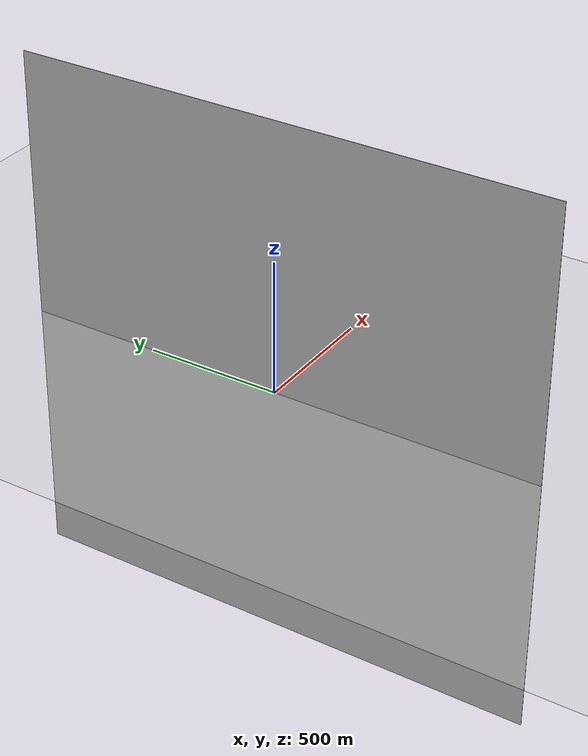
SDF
<sdf version="1.6">
 <world name="default">
  <light name="sun" type="directional">
   <pose>0 0 10 0 -0 0</pose>
   <diffuse>0.8 0.8 0.8 1</diffuse>
   <specular>0.2 0.2 0.2 1</specular>
   <attenuation>
    <range>1000</range>
    <constant>0.9</constant>
    <linear>0.01</linear>
    <quadratic>0.001</quadratic>
   </attenuation>
   <direction>-0.5 0.1 -0.9</direction>
  </light>
  <model name="ground_plane">
   <static>1</static>
   <link name="link">
    <collision name="collision">
     <geometry><plane><normal>0 0 1</normal><size>300 300</size></plane></geometry>
     <surface><friction><ode><mu>100</mu><mu2>50</mu2></ode></friction></surface>
    </collision>
    <visual name="visual">
     <cast_shadows>0</cast_shadows>
     <geometry><plane><normal>0 0 1</normal><size>300 300</size></plane></geometry>
     <material>
      <script><uri>file://media/materials/scripts/gazebo.material</uri><name>Gazebo/Grey</name></script>
     </material>
    </visual>
   </link>
  </model>
  <gravity>0 0 -9.8</gravity>
  <magnetic_field>6e-06 2.3e-05 -4.2e-05</magnetic_field>
  <atmosphere type="adiabatic"/>
  <physics name="default_physics" default="0" type="ode">
   <max_step_size>0.001</max_step_size>
   <real_time_factor>1</real_time_factor>
   <real_time_update_rate>1000</real_time_update_rate>
  </physics>
  <scene><ambient>0.4 0.4 0.4 1</ambient><background>0.7 0.7 0.7 1</background><shadows>1</shadows></scene>
  <spherical_coordinates>
   <surface_model>EARTH_WGS84</surface_model>
   <latitude_deg>0</latitude_deg>
   <longitude_deg>0</longitude_deg>
   <elevation>0</elevation>
   <heading_deg>0</heading_deg>
  </spherical_coordinates>
  <include><uri>model://takeoff</uri><pose>-0 -0.5 0 0 1.57 1.57</pose></include>
  <include><uri>model://checkerboard_plane</uri><pose>5 0 2 0 1.57 3.14</pose></include>
 </world>
</sdf>

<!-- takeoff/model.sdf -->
<sdf version="1.6">
  <model name="takeoff">
    <static>true</static>
    <link name="link">
      <visual name="visual">
        <geometry>
          <mesh>
            <uri>model://takeoff/meshes/takeoff.dae</uri>
          <scale>2.0 2.0 2.0</scale></mesh>
        </geometry>
      </visual>
    </link>
  </model>
</sdf>

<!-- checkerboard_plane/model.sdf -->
<sdf version="1.5">
  <model name="checkerboard_plane">
    <static>true</static>
    <link name="link">
      <collision name="collision">
        <geometry>
          <plane>
            <normal>0 0 1</normal>
            <size>2000 2000</size>
          </plane>
        </geometry>
        <surface>
          <friction>
            <ode>
              <mu>100</mu>
              <mu2>50</mu2>
            </ode>
          </friction>
        </surface>
      </collision>
      <visual name="visual">
        <cast_shadows>false</cast_shadows>
        <geometry>
          <plane>
            <normal>0 0 1</normal>
            <size>2000 2000</size>
          </plane>
        </geometry>
        <material>
          <script>
            <uri>model://checkerboard_plane/materials/scripts</uri>
            <uri>model://checkerboard_plane/materials/textures</uri>
            <name>Checkerboard/Checkerboard</name>
          </script>
        </material>
      </visual>
    </link>
  </model>
</sdf>
